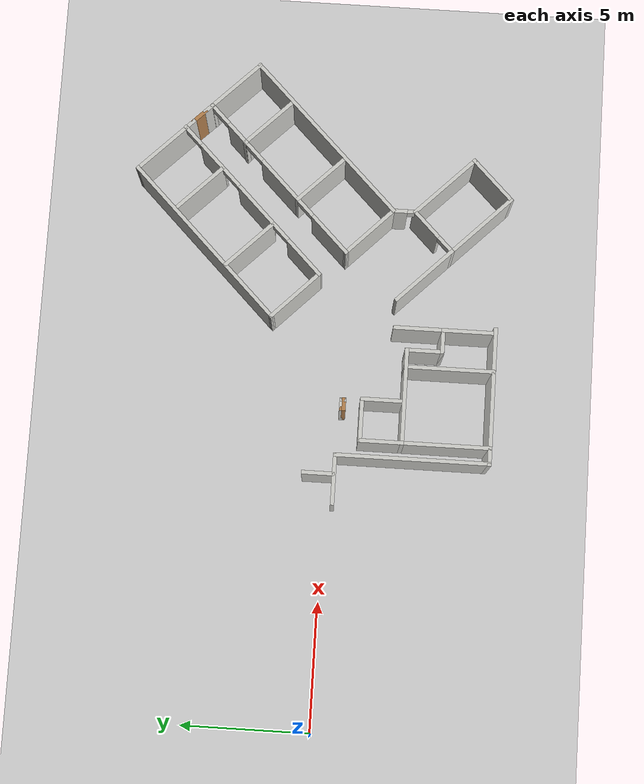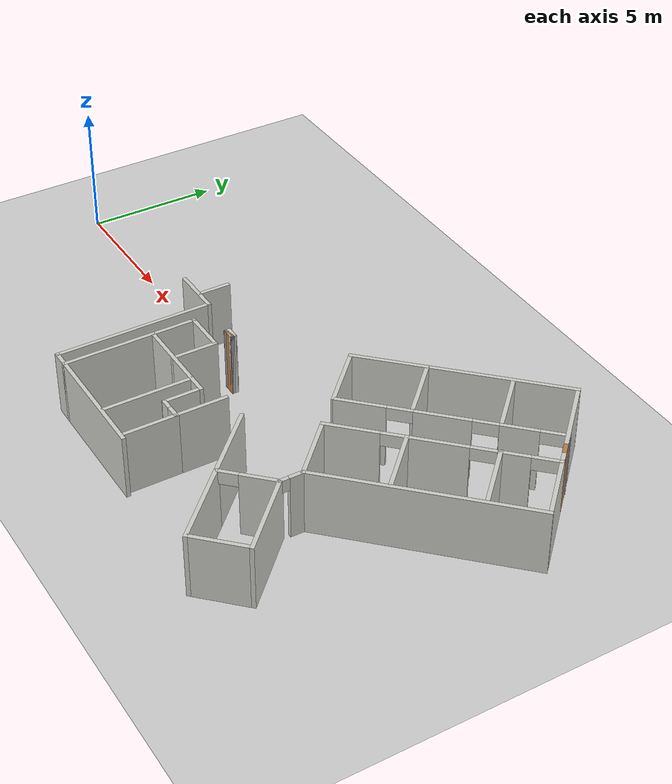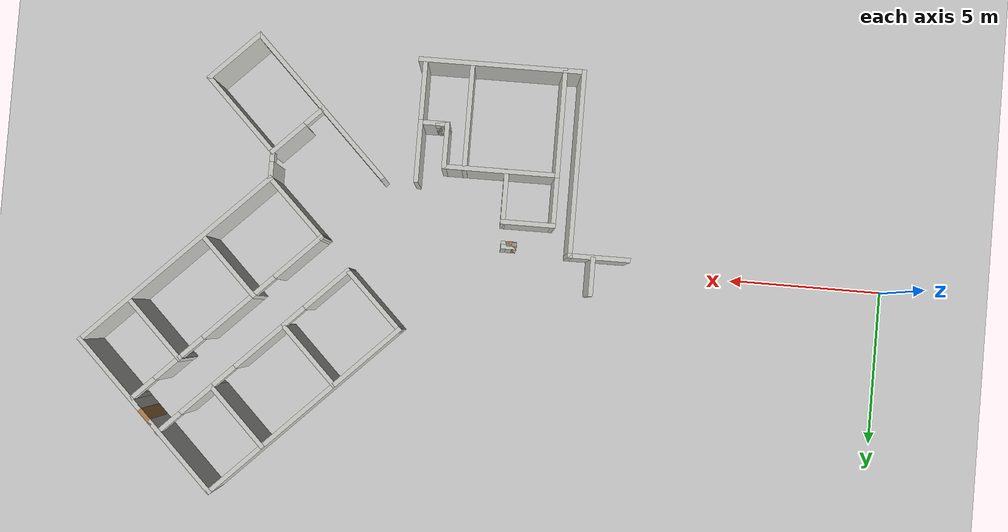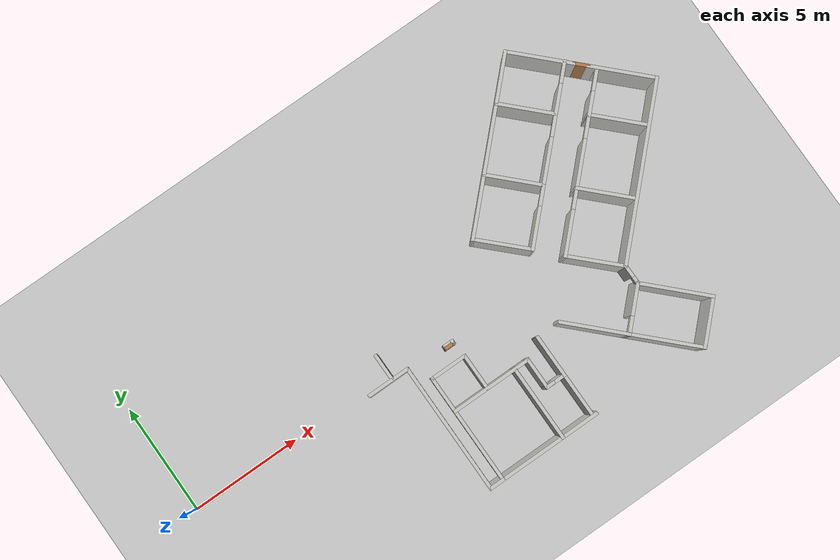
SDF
<sdf version="1.7">
 <world name="default">
  <model name="ground_plane">
   <static>1</static>
   <link name="link">
    <collision name="collision">
     <geometry><plane><normal>0 0 1</normal><size>100 100</size></plane></geometry>
     <surface>
      <contact><collide_bitmask>65535</collide_bitmask></contact>
      <friction><ode><mu>100</mu><mu2>50</mu2></ode></friction>
     </surface>
    </collision>
    <visual name="visual">
     <cast_shadows>0</cast_shadows>
     <geometry><plane><normal>0 0 1</normal><size>100 100</size></plane></geometry>
     <material>
      <script><uri>file://media/materials/scripts/gazebo.material</uri><name>Gazebo/Grey</name></script>
     </material>
    </visual>
   </link>
  </model>
  <model name="SUST_IICT">
   <pose>8.32781 0.748146 0 0 -0 0</pose>
   <link name="Wall_107">
    <collision name="Wall_107_Collision">
     <geometry><box><size>3 0.15 2.5</size></box></geometry>
     <pose>0 0 1.25 0 -0 0</pose>
    </collision>
    <visual name="Wall_107_Visual">
     <pose>0 0 1.25 0 -0 0</pose>
     <geometry><box><size>3 0.15 2.5</size></box></geometry>
     <material>
      <script><uri>file://media/materials/scripts/gazebo.material</uri><name>Gazebo/CeilingTiled</name></script>
      <ambient>1 0.764706 0.305882 1</ambient>
     </material>
     <meta><layer>0</layer></meta>
    </visual>
    <pose>13.9288 6.25863 0 0 -0 2.35619</pose>
   </link>
   <link name="Wall_112">
    <collision name="Wall_112_Collision">
     <geometry><box><size>8 0.15 2.5</size></box></geometry>
     <pose>0 0 1.25 0 -0 0</pose>
    </collision>
    <visual name="Wall_112_Visual">
     <pose>0 0 1.25 0 -0 0</pose>
     <geometry><box><size>8 0.15 2.5</size></box></geometry>
     <material>
      <script><uri>file://media/materials/scripts/gazebo.material</uri><name>Gazebo/CeilingTiled</name></script>
      <ambient>1 0.764706 0.305882 1</ambient>
     </material>
     <meta><layer>0</layer></meta>
    </visual>
    <pose>14.6006 0.036092 0 0 -0 0.785398</pose>
   </link>
   <link name="Wall_114">
    <collision name="Wall_114_Collision">
     <geometry><box><size>7.99602 0.15 2.5</size></box></geometry>
     <pose>0 0 1.25 0 -0 0</pose>
    </collision>
    <visual name="Wall_114_Visual">
     <pose>0 0 1.25 0 -0 0</pose>
     <geometry><box><size>7.99602 0.15 2.5</size></box></geometry>
     <material>
      <script><uri>file://media/materials/scripts/gazebo.material</uri><name>Gazebo/CeilingTiled</name></script>
      <ambient>1 0.764706 0.305882 1</ambient>
     </material>
     <meta><layer>0</layer></meta>
    </visual>
    <pose>10.1486 4.49086 0 0 -0 0.785906</pose>
   </link>
   <link name="Wall_116">
    <collision name="Wall_116_Collision">
     <geometry><box><size>3 0.15 2.5</size></box></geometry>
     <pose>0 0 1.25 0 -0 0</pose>
    </collision>
    <visual name="Wall_116_Visual">
     <pose>0 0 1.25 0 -0 0</pose>
     <geometry><box><size>3 0.15 2.5</size></box></geometry>
     <material>
      <script><uri>file://media/materials/scripts/gazebo.material</uri><name>Gazebo/CeilingTiled</name></script>
      <ambient>1 0.764706 0.305882 1</ambient>
     </material>
     <meta><layer>0</layer></meta>
    </visual>
    <pose>16.3683 3.81911 0 0 -0 -0.785398</pose>
   </link>
   <link name="Wall_130">
    <collision name="Wall_130_Collision">
     <geometry><box><size>2 0.15 2.5</size></box></geometry>
     <pose>0 0 1.25 0 -0 0</pose>
    </collision>
    <visual name="Wall_130_Visual">
     <pose>0 0 1.25 0 -0 0</pose>
     <geometry><box><size>2 0.15 2.5</size></box></geometry>
     <material>
      <script><uri>file://media/materials/scripts/gazebo.material</uri><name>Gazebo/CeilingTiled</name></script>
      <ambient>1 0.764706 0.305882 1</ambient>
     </material>
     <meta><layer>0</layer></meta>
    </visual>
    <pose>7.225 -5.83397 0 0 -0 -1.5708</pose>
   </link>
   <link name="Wall_136">
    <collision name="Wall_136_Collision">
     <geometry><box><size>3.25 0.15 2.5</size></box></geometry>
     <pose>0 0 1.25 0 -0 0</pose>
    </collision>
    <visual name="Wall_136_Visual">
     <pose>0 0 1.25 0 -0 0</pose>
     <geometry><box><size>3.25 0.15 2.5</size></box></geometry>
     <material>
      <script><uri>file://media/materials/scripts/gazebo.material</uri><name>Gazebo/CeilingTiled</name></script>
      <ambient>1 0.764706 0.305882 1</ambient>
     </material>
     <meta><layer>0</layer></meta>
    </visual>
    <pose>11.4363 -6.17024 0 0 -0 -0.785398</pose>
   </link>
   <link name="Wall_141">
    <collision name="Wall_141_Collision">
     <geometry><box><size>3.25 0.15 2.5</size></box></geometry>
     <pose>0 0 1.25 0 -0 0</pose>
    </collision>
    <visual name="Wall_141_Visual">
     <pose>0 0 1.25 0 -0 0</pose>
     <geometry><box><size>3.25 0.15 2.5</size></box></geometry>
     <material>
      <script><uri>file://media/materials/scripts/gazebo.material</uri><name>Gazebo/CeilingTiled</name></script>
      <ambient>1 0.764706 0.305882 1</ambient>
     </material>
     <meta><layer>0</layer></meta>
    </visual>
    <pose>12.9212 -4.68532 0 0 -0 -0.785398</pose>
   </link>
   <link name="Wall_143">
    <collision name="Wall_143_Collision">
     <geometry><box><size>2.25 0.15 2.5</size></box></geometry>
     <pose>0 0 1.25 0 -0 0</pose>
    </collision>
    <visual name="Wall_143_Visual">
     <pose>0 0 1.25 0 -0 0</pose>
     <geometry><box><size>2.25 0.15 2.5</size></box></geometry>
     <material>
      <script><uri>file://media/materials/scripts/gazebo.material</uri><name>Gazebo/CeilingTiled</name></script>
      <ambient>1 0.764706 0.305882 1</ambient>
     </material>
     <meta><layer>0</layer></meta>
    </visual>
    <pose>13.2747 -6.5238 0 0 -0 0.785398</pose>
   </link>
   <link name="Wall_145">
    <collision name="Wall_145_Collision">
     <geometry><box><size>4.75 0.15 2.5</size></box></geometry>
     <pose>0 0 1.25 0 -0 0</pose>
    </collision>
    <visual name="Wall_145_Visual">
     <pose>0 0 1.25 0 -0 0</pose>
     <geometry><box><size>4.75 0.15 2.5</size></box></geometry>
     <material>
      <script><uri>file://media/materials/scripts/gazebo.material</uri><name>Gazebo/CeilingTiled</name></script>
      <ambient>1 0.764706 0.305882 1</ambient>
     </material>
     <meta><layer>0</layer></meta>
    </visual>
    <pose>5.075 -6.90897 0 0 -0 0</pose>
   </link>
   <link name="Wall_157">
    <collision name="Wall_157_Collision">
     <geometry><box><size>2 0.15 2.5</size></box></geometry>
     <pose>0 0 1.25 0 -0 0</pose>
    </collision>
    <visual name="Wall_157_Visual">
     <pose>0 0 1.25 0 -0 0</pose>
     <geometry><box><size>2 0.15 2.5</size></box></geometry>
     <material>
      <script><uri>file://media/materials/scripts/gazebo.material</uri><name>Gazebo/CeilingTiled</name></script>
      <ambient>1 0.764706 0.305882 1</ambient>
     </material>
     <meta><layer>0</layer></meta>
    </visual>
    <pose>1.25 -1.05897 0 0 -0 3.14159</pose>
   </link>
   <link name="Wall_18">
    <collision name="Wall_18_Collision">
     <geometry><box><size>0.75 0.15 2.5</size></box></geometry>
     <pose>0 0 1.25 0 -0 0</pose>
    </collision>
    <visual name="Wall_18_Visual">
     <pose>0 0 1.25 0 -0 0</pose>
     <geometry><box><size>0.75 0.15 2.5</size></box></geometry>
     <material>
      <script><uri>file://media/materials/scripts/gazebo.material</uri><name>Gazebo/Wood</name></script>
      <ambient>1 1 1 1</ambient>
     </material>
     <meta><layer>0</layer></meta>
    </visual>
    <pose>15.1486 5.03887 0 0 -0 -0.785398</pose>
   </link>
   <link name="Wall_21">
    <pose>11.8252 -3.1643 0 0 -0 -1.5708</pose>
    <visual name="Wall_21_Visual_0">
     <pose>-0.193916 0 1.25 0 -0 0</pose>
     <geometry><box><size>0.612167 0.15 2.5</size></box></geometry>
     <material>
      <script><uri>file://media/materials/scripts/gazebo.material</uri><name>Gazebo/CeilingTiled</name></script>
      <ambient>1 0.764706 0.305882 1</ambient>
     </material>
     <meta><layer>0</layer></meta>
    </visual>
    <collision name="Wall_21_Collision_0">
     <geometry><box><size>0.612167 0.15 2.5</size></box></geometry>
     <pose>-0.193916 0 1.25 0 -0 0</pose>
    </collision>
    <visual name="Wall_21_Visual_1">
     <pose>0.476781 0 1.25 0 -0 0</pose>
     <geometry><box><size>0.046437 0.15 2.5</size></box></geometry>
     <material>
      <script><uri>file://media/materials/scripts/gazebo.material</uri><name>Gazebo/CeilingTiled</name></script>
      <ambient>1 0.764706 0.305882 1</ambient>
     </material>
     <meta><layer>0</layer></meta>
    </visual>
    <collision name="Wall_21_Collision_1">
     <geometry><box><size>0.046437 0.15 2.5</size></box></geometry>
     <pose>0.476781 0 1.25 0 -0 0</pose>
    </collision>
    <visual name="Wall_21_Visual_2">
     <pose>0.282865 0 2.25 0 -0 0</pose>
     <geometry><box><size>0.341396 0.15 0.5</size></box></geometry>
     <material>
      <script><uri>file://media/materials/scripts/gazebo.material</uri><name>Gazebo/CeilingTiled</name></script>
      <ambient>1 0.764706 0.305882 1</ambient>
     </material>
     <meta><layer>0</layer></meta>
    </visual>
    <collision name="Wall_21_Collision_2">
     <geometry><box><size>0.341396 0.15 0.5</size></box></geometry>
     <pose>0.282865 0 2.25 0 -0 0</pose>
    </collision>
   </link>
   <link name="Wall_219">
    <collision name="Wall_219_Collision">
     <geometry><box><size>0.25 0.15 2.5</size></box></geometry>
     <pose>0 0 1.25 0 -0 0</pose>
    </collision>
    <visual name="Wall_219_Visual">
     <pose>0 0 1.25 0 -0 0</pose>
     <geometry><box><size>0.25 0.15 2.5</size></box></geometry>
     <material>
      <script><uri>file://media/materials/scripts/gazebo.material</uri><name>Gazebo/CeilingTiled</name></script>
      <ambient>1 1 1 1</ambient>
     </material>
     <meta><layer>0</layer></meta>
    </visual>
    <pose>4.30223 -1.22534 0 0 -0 -1.5708</pose>
   </link>
   <link name="Wall_220">
    <collision name="Wall_220_Collision">
     <geometry><box><size>0.25 0.15 2.5</size></box></geometry>
     <pose>0 0 1.25 0 -0 0</pose>
    </collision>
    <visual name="Wall_220_Visual">
     <pose>0 0 1.25 0 -0 0</pose>
     <geometry><box><size>0.25 0.15 2.5</size></box></geometry>
     <material>
      <script><uri>file://media/materials/scripts/gazebo.material</uri><name>Gazebo/Grey</name></script>
      <ambient>1 1 1 1</ambient>
     </material>
     <meta><layer>0</layer></meta>
    </visual>
    <pose>4.25223 -1.27534 0 0 -0 3.14159</pose>
   </link>
   <link name="Wall_224">
    <collision name="Wall_224_Collision">
     <geometry><box><size>0.5 0.15 2.5</size></box></geometry>
     <pose>0 0 1.25 0 -0 0</pose>
    </collision>
    <visual name="Wall_224_Visual">
     <pose>0 0 1.25 0 -0 0</pose>
     <geometry><box><size>0.5 0.15 2.5</size></box></geometry>
     <material>
      <script><uri>file://media/materials/scripts/gazebo.material</uri><name>Gazebo/Wood</name></script>
      <ambient>1 1 1 1</ambient>
     </material>
     <meta><layer>0</layer></meta>
    </visual>
    <pose>4.12723 -1.27534 0 0 -0 3.14159</pose>
   </link>
   <link name="Wall_225">
    <collision name="Wall_225_Collision">
     <geometry><box><size>0.15 0.15 2.5</size></box></geometry>
     <pose>0 0 1.25 0 -0 0</pose>
    </collision>
    <visual name="Wall_225_Visual">
     <pose>0 0 1.25 0 -0 0</pose>
     <geometry><box><size>0.15 0.15 2.5</size></box></geometry>
     <material>
      <script><uri>file://media/materials/scripts/gazebo.material</uri><name>Gazebo/Grey</name></script>
      <ambient>1 1 1 1</ambient>
     </material>
     <meta><layer>0</layer></meta>
    </visual>
    <pose>3.95223 -1.27534 0 0 -0 0</pose>
   </link>
   <link name="Wall_226">
    <collision name="Wall_226_Collision">
     <geometry><box><size>0.15 0.15 2.5</size></box></geometry>
     <pose>0 0 1.25 0 -0 0</pose>
    </collision>
    <visual name="Wall_226_Visual">
     <pose>0 0 1.25 0 -0 0</pose>
     <geometry><box><size>0.15 0.15 2.5</size></box></geometry>
     <material>
      <script><uri>file://media/materials/scripts/gazebo.material</uri><name>Gazebo/Grey</name></script>
      <ambient>1 1 1 1</ambient>
     </material>
     <meta><layer>0</layer></meta>
    </visual>
    <pose>3.95223 -1.27534 0 0 -0 0</pose>
   </link>
   <link name="Wall_227">
    <collision name="Wall_227_Collision">
     <geometry><box><size>0.25 0.15 2.5</size></box></geometry>
     <pose>0 0 1.25 0 -0 0</pose>
    </collision>
    <visual name="Wall_227_Visual">
     <pose>0 0 1.25 0 -0 0</pose>
     <geometry><box><size>0.25 0.15 2.5</size></box></geometry>
     <material>
      <script><uri>file://media/materials/scripts/gazebo.material</uri><name>Gazebo/Wood</name></script>
      <ambient>1 1 1 1</ambient>
     </material>
     <meta><layer>0</layer></meta>
    </visual>
    <pose>3.95223 -1.22534 0 0 -0 1.5708</pose>
   </link>
   <link name="Wall_228">
    <collision name="Wall_228_Collision">
     <geometry><box><size>0.5 0.15 2.5</size></box></geometry>
     <pose>0 0 1.25 0 -0 0</pose>
    </collision>
    <visual name="Wall_228_Visual">
     <pose>0 0 1.25 0 -0 0</pose>
     <geometry><box><size>0.5 0.15 2.5</size></box></geometry>
     <material>
      <script><uri>file://media/materials/scripts/gazebo.material</uri><name>Gazebo/CeilingTiled</name></script>
      <ambient>1 0.764706 0.305882 1</ambient>
     </material>
     <meta><layer>0</layer></meta>
    </visual>
    <pose>4.12723 -1.17534 0 0 -0 0</pose>
   </link>
   <link name="Wall_23">
    <collision name="Wall_23_Collision">
     <geometry><box><size>3 0.15 2.5</size></box></geometry>
     <pose>0 0 1.25 0 -0 0</pose>
    </collision>
    <visual name="Wall_23_Visual">
     <pose>0 0 1.25 0 -0 0</pose>
     <geometry><box><size>3 0.15 2.5</size></box></geometry>
     <material>
      <script><uri>file://media/materials/scripts/gazebo.material</uri><name>Gazebo/CeilingTiled</name></script>
      <ambient>1 0.764706 0.305882 1</ambient>
     </material>
     <meta><layer>0</layer></meta>
    </visual>
    <pose>9.33263 -4.0666 0 0 -0 2.35619</pose>
   </link>
   <link name="Wall_242">
    <collision name="Wall_242_Collision">
     <geometry><box><size>3.5 0.15 2.5</size></box></geometry>
     <pose>0 0 1.25 0 -0 0</pose>
    </collision>
    <visual name="Wall_242_Visual">
     <pose>0 0 1.25 0 -0 0</pose>
     <geometry><box><size>3.5 0.15 2.5</size></box></geometry>
     <material>
      <script><uri>file://media/materials/scripts/gazebo.material</uri><name>Gazebo/CeilingTiled</name></script>
      <ambient>1 0.764706 0.305882 1</ambient>
     </material>
     <meta><layer>0</layer></meta>
    </visual>
    <pose>5.72393 -5.22857 0 0 -0 -1.5708</pose>
   </link>
   <link name="Wall_246">
    <pose>11.0827 -4.33176 0 0 -0 -2.35619</pose>
    <visual name="Wall_246_Visual_0">
     <pose>-0.414127 0 1.25 0 -0 0</pose>
     <geometry><box><size>1.42175 0.15 2.5</size></box></geometry>
     <material>
      <script><uri>file://media/materials/scripts/gazebo.material</uri><name>Gazebo/CeilingTiled</name></script>
      <ambient>1 0.764706 0.305882 1</ambient>
     </material>
     <meta><layer>0</layer></meta>
    </visual>
    <collision name="Wall_246_Collision_0">
     <geometry><box><size>1.42175 0.15 2.5</size></box></geometry>
     <pose>-0.414127 0 1.25 0 -0 0</pose>
    </collision>
    <visual name="Wall_246_Visual_1">
     <pose>1.05742 0 1.25 0 -0 0</pose>
     <geometry><box><size>0.135154 0.15 2.5</size></box></geometry>
     <material>
      <script><uri>file://media/materials/scripts/gazebo.material</uri><name>Gazebo/CeilingTiled</name></script>
      <ambient>1 0.764706 0.305882 1</ambient>
     </material>
     <meta><layer>0</layer></meta>
    </visual>
    <collision name="Wall_246_Collision_1">
     <geometry><box><size>0.135154 0.15 2.5</size></box></geometry>
     <pose>1.05742 0 1.25 0 -0 0</pose>
    </collision>
    <visual name="Wall_246_Visual_2">
     <pose>0.643296 0 2.25 0 -0 0</pose>
     <geometry><box><size>0.693099 0.15 0.5</size></box></geometry>
     <material>
      <script><uri>file://media/materials/scripts/gazebo.material</uri><name>Gazebo/CeilingTiled</name></script>
      <ambient>1 0.764706 0.305882 1</ambient>
     </material>
     <meta><layer>0</layer></meta>
    </visual>
    <collision name="Wall_246_Collision_2">
     <geometry><box><size>0.693099 0.15 0.5</size></box></geometry>
     <pose>0.643296 0 2.25 0 -0 0</pose>
    </collision>
   </link>
   <link name="Wall_250">
    <pose>11.9042 2.75965 0 0 -0 0.785398</pose>
    <visual name="Wall_250_Visual_0">
     <pose>-3.05895 0 1.25 0 -0 0</pose>
     <geometry><box><size>1.8821 0.15 2.5</size></box></geometry>
     <material>
      <script><uri>file://media/materials/scripts/gazebo.material</uri><name>Gazebo/CeilingTiled</name></script>
      <ambient>1 0.764706 0.305882 1</ambient>
     </material>
     <meta><layer>0</layer></meta>
    </visual>
    <collision name="Wall_250_Collision_0">
     <geometry><box><size>1.8821 0.15 2.5</size></box></geometry>
     <pose>-3.05895 0 1.25 0 -0 0</pose>
    </collision>
    <visual name="Wall_250_Visual_1">
     <pose>-0.228996 0 1.25 0 -0 0</pose>
     <geometry><box><size>1.97781 0.15 2.5</size></box></geometry>
     <material>
      <script><uri>file://media/materials/scripts/gazebo.material</uri><name>Gazebo/CeilingTiled</name></script>
      <ambient>1 0.764706 0.305882 1</ambient>
     </material>
     <meta><layer>0</layer></meta>
    </visual>
    <collision name="Wall_250_Collision_1">
     <geometry><box><size>1.97781 0.15 2.5</size></box></geometry>
     <pose>-0.228996 0 1.25 0 -0 0</pose>
    </collision>
    <visual name="Wall_250_Visual_2">
     <pose>2.32905 0 1.25 0 -0 0</pose>
     <geometry><box><size>1.33829 0.15 2.5</size></box></geometry>
     <material>
      <script><uri>file://media/materials/scripts/gazebo.material</uri><name>Gazebo/CeilingTiled</name></script>
      <ambient>1 0.764706 0.305882 1</ambient>
     </material>
     <meta><layer>0</layer></meta>
    </visual>
    <collision name="Wall_250_Collision_2">
     <geometry><box><size>1.33829 0.15 2.5</size></box></geometry>
     <pose>2.32905 0 1.25 0 -0 0</pose>
    </collision>
    <visual name="Wall_250_Visual_3">
     <pose>3.9491 0 1.25 0 -0 0</pose>
     <geometry><box><size>0.1018 0.15 2.5</size></box></geometry>
     <material>
      <script><uri>file://media/materials/scripts/gazebo.material</uri><name>Gazebo/CeilingTiled</name></script>
      <ambient>1 0.764706 0.305882 1</ambient>
     </material>
     <meta><layer>0</layer></meta>
    </visual>
    <collision name="Wall_250_Collision_3">
     <geometry><box><size>0.1018 0.15 2.5</size></box></geometry>
     <pose>3.9491 0 1.25 0 -0 0</pose>
    </collision>
    <visual name="Wall_250_Visual_4">
     <pose>-1.6679 0 2.25 0 -0 0</pose>
     <geometry><box><size>0.9 0.15 0.5</size></box></geometry>
     <material>
      <script><uri>file://media/materials/scripts/gazebo.material</uri><name>Gazebo/CeilingTiled</name></script>
      <ambient>1 0.764706 0.305882 1</ambient>
     </material>
     <meta><layer>0</layer></meta>
    </visual>
    <collision name="Wall_250_Collision_4">
     <geometry><box><size>0.9 0.15 0.5</size></box></geometry>
     <pose>-1.6679 0 2.25 0 -0 0</pose>
    </collision>
    <visual name="Wall_250_Visual_5">
     <pose>1.20991 0 2.25 0 -0 0</pose>
     <geometry><box><size>0.9 0.15 0.5</size></box></geometry>
     <material>
      <script><uri>file://media/materials/scripts/gazebo.material</uri><name>Gazebo/CeilingTiled</name></script>
      <ambient>1 0.764706 0.305882 1</ambient>
     </material>
     <meta><layer>0</layer></meta>
    </visual>
    <collision name="Wall_250_Collision_5">
     <geometry><box><size>0.9 0.15 0.5</size></box></geometry>
     <pose>1.20991 0 2.25 0 -0 0</pose>
    </collision>
    <visual name="Wall_250_Visual_6">
     <pose>3.4482 0 2.25 0 -0 0</pose>
     <geometry><box><size>0.9 0.15 0.5</size></box></geometry>
     <material>
      <script><uri>file://media/materials/scripts/gazebo.material</uri><name>Gazebo/CeilingTiled</name></script>
      <ambient>1 0.764706 0.305882 1</ambient>
     </material>
     <meta><layer>0</layer></meta>
    </visual>
    <collision name="Wall_250_Collision_6">
     <geometry><box><size>0.9 0.15 0.5</size></box></geometry>
     <pose>3.4482 0 2.25 0 -0 0</pose>
    </collision>
   </link>
   <link name="Wall_254">
    <pose>12.8352 1.77544 0 0 -0 0.785398</pose>
    <visual name="Wall_254_Visual_0">
     <pose>-2.99312 0 1.25 0 -0 0</pose>
     <geometry><box><size>2.01377 0.15 2.5</size></box></geometry>
     <material>
      <script><uri>file://media/materials/scripts/gazebo.material</uri><name>Gazebo/CeilingTiled</name></script>
      <ambient>1 0.764706 0.305882 1</ambient>
     </material>
     <meta><layer>0</layer></meta>
    </visual>
    <collision name="Wall_254_Collision_0">
     <geometry><box><size>2.01377 0.15 2.5</size></box></geometry>
     <pose>-2.99312 0 1.25 0 -0 0</pose>
    </collision>
    <visual name="Wall_254_Visual_1">
     <pose>-0.059713 0 1.25 0 -0 0</pose>
     <geometry><box><size>2.05304 0.15 2.5</size></box></geometry>
     <material>
      <script><uri>file://media/materials/scripts/gazebo.material</uri><name>Gazebo/CeilingTiled</name></script>
      <ambient>1 0.764706 0.305882 1</ambient>
     </material>
     <meta><layer>0</layer></meta>
    </visual>
    <collision name="Wall_254_Collision_1">
     <geometry><box><size>2.05304 0.15 2.5</size></box></geometry>
     <pose>-0.059713 0 1.25 0 -0 0</pose>
    </collision>
    <visual name="Wall_254_Visual_2">
     <pose>2.41369 0 1.25 0 -0 0</pose>
     <geometry><box><size>1.09377 0.15 2.5</size></box></geometry>
     <material>
      <script><uri>file://media/materials/scripts/gazebo.material</uri><name>Gazebo/CeilingTiled</name></script>
      <ambient>1 0.764706 0.305882 1</ambient>
     </material>
     <meta><layer>0</layer></meta>
    </visual>
    <collision name="Wall_254_Collision_2">
     <geometry><box><size>1.09377 0.15 2.5</size></box></geometry>
     <pose>2.41369 0 1.25 0 -0 0</pose>
    </collision>
    <visual name="Wall_254_Visual_3">
     <pose>3.93029 0 1.25 0 -0 0</pose>
     <geometry><box><size>0.13942 0.15 2.5</size></box></geometry>
     <material>
      <script><uri>file://media/materials/scripts/gazebo.material</uri><name>Gazebo/CeilingTiled</name></script>
      <ambient>1 0.764706 0.305882 1</ambient>
     </material>
     <meta><layer>0</layer></meta>
    </visual>
    <collision name="Wall_254_Collision_3">
     <geometry><box><size>0.13942 0.15 2.5</size></box></geometry>
     <pose>3.93029 0 1.25 0 -0 0</pose>
    </collision>
    <visual name="Wall_254_Visual_4">
     <pose>-1.53623 0 2.25 0 -0 0</pose>
     <geometry><box><size>0.9 0.15 0.5</size></box></geometry>
     <material>
      <script><uri>file://media/materials/scripts/gazebo.material</uri><name>Gazebo/CeilingTiled</name></script>
      <ambient>1 0.764706 0.305882 1</ambient>
     </material>
     <meta><layer>0</layer></meta>
    </visual>
    <collision name="Wall_254_Collision_4">
     <geometry><box><size>0.9 0.15 0.5</size></box></geometry>
     <pose>-1.53623 0 2.25 0 -0 0</pose>
    </collision>
    <visual name="Wall_254_Visual_5">
     <pose>1.41681 0 2.25 0 -0 0</pose>
     <geometry><box><size>0.9 0.15 0.5</size></box></geometry>
     <material>
      <script><uri>file://media/materials/scripts/gazebo.material</uri><name>Gazebo/CeilingTiled</name></script>
      <ambient>1 0.764706 0.305882 1</ambient>
     </material>
     <meta><layer>0</layer></meta>
    </visual>
    <collision name="Wall_254_Collision_5">
     <geometry><box><size>0.9 0.15 0.5</size></box></geometry>
     <pose>1.41681 0 2.25 0 -0 0</pose>
    </collision>
    <visual name="Wall_254_Visual_6">
     <pose>3.41058 0 2.25 0 -0 0</pose>
     <geometry><box><size>0.9 0.15 0.5</size></box></geometry>
     <material>
      <script><uri>file://media/materials/scripts/gazebo.material</uri><name>Gazebo/CeilingTiled</name></script>
      <ambient>1 0.764706 0.305882 1</ambient>
     </material>
     <meta><layer>0</layer></meta>
    </visual>
    <collision name="Wall_254_Collision_6">
     <geometry><box><size>0.9 0.15 0.5</size></box></geometry>
     <pose>3.41058 0 2.25 0 -0 0</pose>
    </collision>
   </link>
   <link name="Wall_256">
    <collision name="Wall_256_Collision">
     <geometry><box><size>2.61356 0.15 2.5</size></box></geometry>
     <pose>0 0 1.25 0 -0 0</pose>
    </collision>
    <visual name="Wall_256_Visual">
     <pose>0 0 1.25 0 -0 0</pose>
     <geometry><box><size>2.61356 0.15 2.5</size></box></geometry>
     <material>
      <script><uri>file://media/materials/scripts/gazebo.material</uri><name>Gazebo/CeilingTiled</name></script>
      <ambient>1 0.764706 0.305882 1</ambient>
     </material>
     <meta><layer>0</layer></meta>
    </visual>
    <pose>8.2524 0.849864 0 0 -0 -0.779225</pose>
   </link>
   <link name="Wall_258">
    <collision name="Wall_258_Collision">
     <geometry><box><size>2.5 0.15 2.5</size></box></geometry>
     <pose>0 0 1.25 0 -0 0</pose>
    </collision>
    <visual name="Wall_258_Visual">
     <pose>0 0 1.25 0 -0 0</pose>
     <geometry><box><size>2.5 0.15 2.5</size></box></geometry>
     <material>
      <script><uri>file://media/materials/scripts/gazebo.material</uri><name>Gazebo/CeilingTiled</name></script>
      <ambient>1 0.764706 0.305882 1</ambient>
     </material>
     <meta><layer>0</layer></meta>
    </visual>
    <pose>10.1192 2.77103 0 0 -0 -0.785398</pose>
   </link>
   <link name="Wall_260">
    <collision name="Wall_260_Collision">
     <geometry><box><size>2.5 0.15 2.5</size></box></geometry>
     <pose>0 0 1.25 0 -0 0</pose>
    </collision>
    <visual name="Wall_260_Visual">
     <pose>0 0 1.25 0 -0 0</pose>
     <geometry><box><size>2.5 0.15 2.5</size></box></geometry>
     <material>
      <script><uri>file://media/materials/scripts/gazebo.material</uri><name>Gazebo/CeilingTiled</name></script>
      <ambient>1 0.764706 0.305882 1</ambient>
     </material>
     <meta><layer>0</layer></meta>
    </visual>
    <pose>12.2206 4.87245 0 0 -0 -0.785398</pose>
   </link>
   <link name="Wall_262">
    <collision name="Wall_262_Collision">
     <geometry><box><size>2.5 0.15 2.5</size></box></geometry>
     <pose>0 0 1.25 0 -0 0</pose>
    </collision>
    <visual name="Wall_262_Visual">
     <pose>0 0 1.25 0 -0 0</pose>
     <geometry><box><size>2.5 0.15 2.5</size></box></geometry>
     <material>
      <script><uri>file://media/materials/scripts/gazebo.material</uri><name>Gazebo/CeilingTiled</name></script>
      <ambient>1 0.764706 0.305882 1</ambient>
     </material>
     <meta><layer>0</layer></meta>
    </visual>
    <pose>15.0402 2.34543 0 0 -0 -0.785398</pose>
   </link>
   <link name="Wall_264">
    <collision name="Wall_264_Collision">
     <geometry><box><size>2.5 0.15 2.5</size></box></geometry>
     <pose>0 0 1.25 0 -0 0</pose>
    </collision>
    <visual name="Wall_264_Visual">
     <pose>0 0 1.25 0 -0 0</pose>
     <geometry><box><size>2.5 0.15 2.5</size></box></geometry>
     <material>
      <script><uri>file://media/materials/scripts/gazebo.material</uri><name>Gazebo/CeilingTiled</name></script>
      <ambient>1 0.764706 0.305882 1</ambient>
     </material>
     <meta><layer>0</layer></meta>
    </visual>
    <pose>12.8856 0.164215 0 0 -0 -0.785398</pose>
   </link>
   <link name="Wall_266">
    <collision name="Wall_266_Collision">
     <geometry><box><size>2.62831 0.15 2.5</size></box></geometry>
     <pose>0 0 1.25 0 -0 0</pose>
    </collision>
    <visual name="Wall_266_Visual">
     <pose>0 0 1.25 0 -0 0</pose>
     <geometry><box><size>2.62831 0.15 2.5</size></box></geometry>
     <material>
      <script><uri>file://media/materials/scripts/gazebo.material</uri><name>Gazebo/CeilingTiled</name></script>
      <ambient>1 0.764706 0.305882 1</ambient>
     </material>
     <meta><layer>0</layer></meta>
    </visual>
    <pose>10.9425 -1.86963 0 0 -0 -0.777963</pose>
   </link>
   <link name="Wall_27">
    <collision name="Wall_27_Collision">
     <geometry><box><size>2 0.15 2.5</size></box></geometry>
     <pose>0 0 1.25 0 -0 0</pose>
    </collision>
    <visual name="Wall_27_Visual">
     <pose>0 0 1.25 0 -0 0</pose>
     <geometry><box><size>2 0.15 2.5</size></box></geometry>
     <material>
      <script><uri>file://media/materials/scripts/gazebo.material</uri><name>Gazebo/CeilingTiled</name></script>
      <ambient>1 0.764706 0.305882 1</ambient>
     </material>
     <meta><layer>0</layer></meta>
    </visual>
    <pose>7.225 -3.98397 0 0 -0 -1.5708</pose>
   </link>
   <link name="Wall_30">
    <pose>6.8 -4.90897 0 0 -0 3.14159</pose>
    <visual name="Wall_30_Visual_0">
     <pose>0 0 1.25 0 -0 0</pose>
     <geometry><box><size>1 0.15 2.5</size></box></geometry>
     <material>
      <script><uri>file://media/materials/scripts/gazebo.material</uri><name>Gazebo/CeilingTiled</name></script>
      <ambient>1 0.764706 0.305882 1</ambient>
     </material>
     <meta><layer>0</layer></meta>
    </visual>
    <collision name="Wall_30_Collision_0">
     <geometry><box><size>1 0.15 2.5</size></box></geometry>
     <pose>0 0 1.25 0 -0 0</pose>
    </collision>
    <visual name="Wall_30_Visual_1">
     <pose>0.274878 0 1.25 0 -0 0</pose>
     <geometry><box><size>0.450245 0.15 2.5</size></box></geometry>
     <material>
      <script><uri>file://media/materials/scripts/gazebo.material</uri><name>Gazebo/CeilingTiled</name></script>
      <ambient>1 0.764706 0.305882 1</ambient>
     </material>
     <meta><layer>0</layer></meta>
    </visual>
    <collision name="Wall_30_Collision_1">
     <geometry><box><size>0.450245 0.15 2.5</size></box></geometry>
     <pose>0.274878 0 1.25 0 -0 0</pose>
    </collision>
   </link>
   <link name="Wall_31">
    <collision name="Wall_31_Collision">
     <geometry><box><size>1.5 0.15 2.5</size></box></geometry>
     <pose>0 0 1.25 0 -0 0</pose>
    </collision>
    <visual name="Wall_31_Visual">
     <pose>0 0 1.25 0 -0 0</pose>
     <geometry><box><size>1.5 0.15 2.5</size></box></geometry>
     <material>
      <script><uri>file://media/materials/scripts/gazebo.material</uri><name>Gazebo/CeilingTiled</name></script>
      <ambient>1 0.764706 0.305882 1</ambient>
     </material>
     <meta><layer>0</layer></meta>
    </visual>
    <pose>6.375 -4.23397 0 0 -0 1.5708</pose>
   </link>
   <link name="Wall_32">
    <collision name="Wall_32_Collision">
     <geometry><box><size>3.75 0.15 2.5</size></box></geometry>
     <pose>0 0 1.25 0 -0 0</pose>
    </collision>
    <visual name="Wall_32_Visual">
     <pose>0 0 1.25 0 -0 0</pose>
     <geometry><box><size>3.75 0.15 2.5</size></box></geometry>
     <material>
      <script><uri>file://media/materials/scripts/gazebo.material</uri><name>Gazebo/CeilingTiled</name></script>
      <ambient>1 0.764706 0.305882 1</ambient>
     </material>
     <meta><layer>0</layer></meta>
    </visual>
    <pose>4.575 -3.55897 0 0 -0 3.14159</pose>
   </link>
   <link name="Wall_33">
    <collision name="Wall_33_Collision">
     <geometry><box><size>3.5 0.15 2.5</size></box></geometry>
     <pose>0 0 1.25 0 -0 0</pose>
    </collision>
    <visual name="Wall_33_Visual">
     <pose>0 0 1.25 0 -0 0</pose>
     <geometry><box><size>3.5 0.15 2.5</size></box></geometry>
     <material>
      <script><uri>file://media/materials/scripts/gazebo.material</uri><name>Gazebo/CeilingTiled</name></script>
      <ambient>1 0.764706 0.305882 1</ambient>
     </material>
     <meta><layer>0</layer></meta>
    </visual>
    <pose>2.775 -5.23397 0 0 -0 -1.5708</pose>
   </link>
   <link name="Wall_34">
    <collision name="Wall_34_Collision">
     <geometry><box><size>0.75 0.15 2.5</size></box></geometry>
     <pose>0 0 1.25 0 -0 0</pose>
    </collision>
    <visual name="Wall_34_Visual">
     <pose>0 0 1.25 0 -0 0</pose>
     <geometry><box><size>0.75 0.15 2.5</size></box></geometry>
     <material>
      <script><uri>file://media/materials/scripts/gazebo.material</uri><name>Gazebo/CeilingTiled</name></script>
      <ambient>1 0.764706 0.305882 1</ambient>
     </material>
     <meta><layer>0</layer></meta>
    </visual>
    <pose>2.475 -6.90897 0 0 -0 3.14159</pose>
   </link>
   <link name="Wall_35">
    <collision name="Wall_35_Collision">
     <geometry><box><size>6 0.15 2.5</size></box></geometry>
     <pose>0 0 1.25 0 -0 0</pose>
    </collision>
    <visual name="Wall_35_Visual">
     <pose>0 0 1.25 0 -0 0</pose>
     <geometry><box><size>6 0.15 2.5</size></box></geometry>
     <material>
      <script><uri>file://media/materials/scripts/gazebo.material</uri><name>Gazebo/CeilingTiled</name></script>
      <ambient>1 0.764706 0.305882 1</ambient>
     </material>
     <meta><layer>0</layer></meta>
    </visual>
    <pose>2.175 -3.98397 0 0 -0 1.5708</pose>
   </link>
   <link name="Wall_68">
    <collision name="Wall_68_Collision">
     <geometry><box><size>1.25 0.15 2.5</size></box></geometry>
     <pose>0 0 1.25 0 -0 0</pose>
    </collision>
    <visual name="Wall_68_Visual">
     <pose>0 0 1.25 0 -0 0</pose>
     <geometry><box><size>1.25 0.15 2.5</size></box></geometry>
     <material>
      <script><uri>file://media/materials/scripts/gazebo.material</uri><name>Gazebo/CeilingTiled</name></script>
      <ambient>1 0.764706 0.305882 1</ambient>
     </material>
     <meta><layer>0</layer></meta>
    </visual>
    <pose>1.43393 -0.449663 0 0 -0 -1.5708</pose>
   </link>
   <link name="Wall_76">
    <collision name="Wall_76_Collision">
     <geometry><box><size>1.75 0.15 2.5</size></box></geometry>
     <pose>0 0 1.25 0 -0 0</pose>
    </collision>
    <visual name="Wall_76_Visual">
     <pose>0 0 1.25 0 -0 0</pose>
     <geometry><box><size>1.75 0.15 2.5</size></box></geometry>
     <material>
      <script><uri>file://media/materials/scripts/gazebo.material</uri><name>Gazebo/CeilingTiled</name></script>
      <ambient>1 0.764706 0.305882 1</ambient>
     </material>
     <meta><layer>0</layer></meta>
    </visual>
    <pose>2.775 -2.75897 0 0 -0 1.5708</pose>
   </link>
   <link name="Wall_79">
    <collision name="Wall_79_Collision">
     <geometry><box><size>1.75 0.15 2.5</size></box></geometry>
     <pose>0 0 1.25 0 -0 0</pose>
    </collision>
    <visual name="Wall_79_Visual">
     <pose>0 0 1.25 0 -0 0</pose>
     <geometry><box><size>1.75 0.15 2.5</size></box></geometry>
     <material>
      <script><uri>file://media/materials/scripts/gazebo.material</uri><name>Gazebo/CeilingTiled</name></script>
      <ambient>1 0.764706 0.305882 1</ambient>
     </material>
     <meta><layer>0</layer></meta>
    </visual>
    <pose>3.575 -1.95897 0 0 -0 0</pose>
   </link>
   <link name="Wall_80">
    <collision name="Wall_80_Collision">
     <geometry><box><size>1.75 0.15 2.5</size></box></geometry>
     <pose>0 0 1.25 0 -0 0</pose>
    </collision>
    <visual name="Wall_80_Visual">
     <pose>0 0 1.25 0 -0 0</pose>
     <geometry><box><size>1.75 0.15 2.5</size></box></geometry>
     <material>
      <script><uri>file://media/materials/scripts/gazebo.material</uri><name>Gazebo/CeilingTiled</name></script>
      <ambient>1 0.764706 0.305882 1</ambient>
     </material>
     <meta><layer>0</layer></meta>
    </visual>
    <pose>4.375 -2.75897 0 0 -0 -1.5708</pose>
   </link>
   <static>1</static>
  </model>
 </world>
</sdf>
